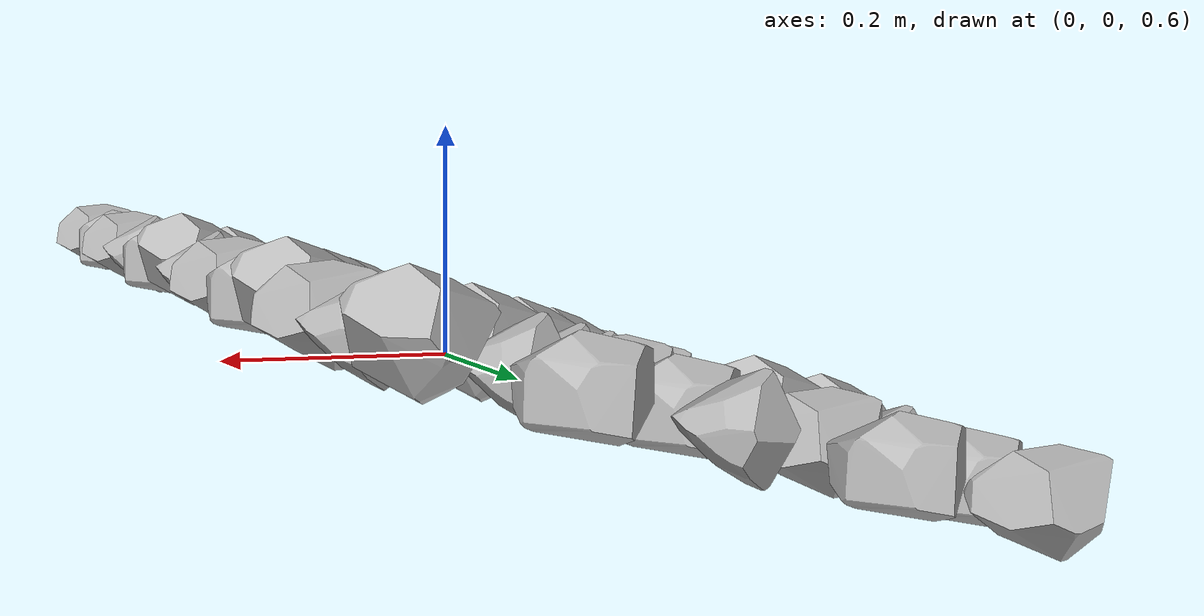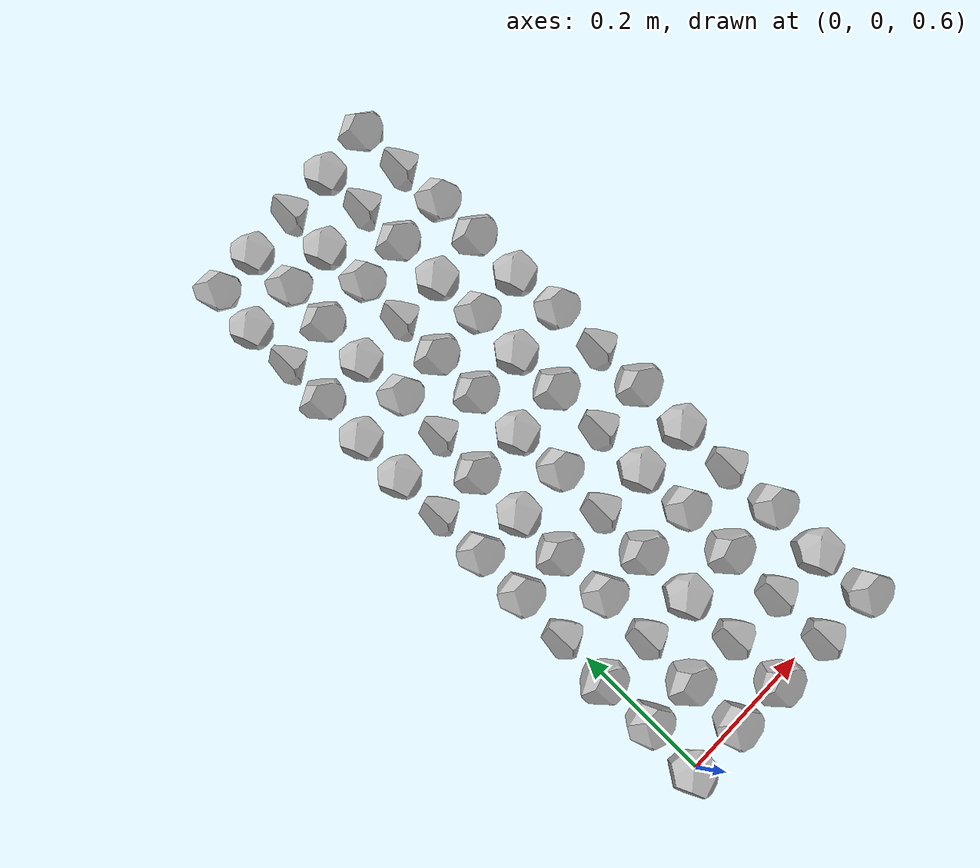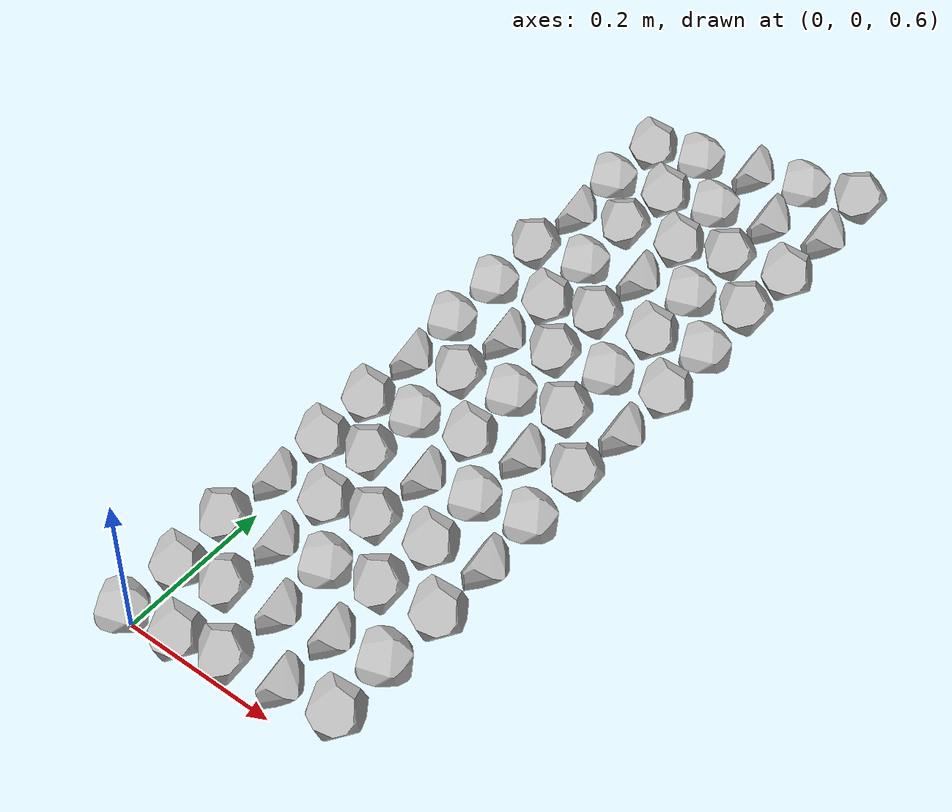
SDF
<?xml version='1.0'?>
<sdf version='1.5'>
  <model name="gravel_ramp1">
    <static>false</static>
    <pose>0 0 0.6 0 -0.26 0</pose>
      <!-- ter1  change collision mass ineritia ...-->

      <!-- ROW1 ################################################################################################ -->

      <link name="pebble00">
        <pose>0 0 0 0 0 0</pose>
        <inertial>
          <pose>0 0 0 0 0 0</pose>
          <mass>0.01</mass>
          <inertia>
            <ixx>0.0001</ixx>
            <iyy>0.0001</iyy>
            <izz>0.0001</izz>
            <ixy>0.0001</ixy>
            <ixz>0.0001</ixz>
            <iyz>0.0001</iyz>
          </inertia>
        </inertial>
        <visual name="visual">
          <geometry>
            <mesh>
              <uri>model://Pebble1/mesh/Pebble1.dae</uri>
            </mesh>
          </geometry>
        </visual>
        <collision name="collision">
          <geometry>
            <mesh>
              <uri>model://Pebble1/mesh/Pebble1.dae</uri>
            </mesh>
          </geometry>
        </collision>
      </link>

      <link name="pebble01">
        <pose>0 0.08 0 0 0 0</pose>
        <inertial>
          <pose>0 0 0 0 0 0</pose>
          <mass>0.01</mass>
          <inertia>
            <ixx>0.0001</ixx>
            <iyy>0.0001</iyy>
            <izz>0.0001</izz>
            <ixy>0.0001</ixy>
            <ixz>0.0001</ixz>
            <iyz>0.0001</iyz>
          </inertia>
        </inertial>
        <visual name="visual">
          <geometry>
            <mesh>
              <uri>model://Pebble2/mesh/Pebble2.dae</uri>
            </mesh>
          </geometry>
        </visual>
        <collision name="collision">
          <geometry>
            <mesh>
              <uri>model://Pebble2/mesh/Pebble2.dae</uri>
            </mesh>
          </geometry>
        </collision>
      </link>

      <link name="pebble02">
        <pose>0 0.16 0 0 0 0</pose>
        <inertial>
          <pose>0 0 0 0 0 0</pose>
          <mass>0.01</mass>
          <inertia>
            <ixx>0.0001</ixx>
            <iyy>0.0001</iyy>
            <izz>0.0001</izz>
            <ixy>0.0001</ixy>
            <ixz>0.0001</ixz>
            <iyz>0.0001</iyz>
          </inertia>
        </inertial>
        <visual name="visual">
          <geometry>
            <mesh>
              <uri>model://Pebble3/mesh/Pebble3.dae</uri>
            </mesh>
          </geometry>
        </visual>
        <collision name="collision">
          <geometry>
            <mesh>
              <uri>model://Pebble3/mesh/Pebble3.dae</uri>
            </mesh>
          </geometry>
        </collision>
      </link>

      <link name="pebble03">
        <pose>0 0.24 0 0 0 0</pose>
        <inertial>
          <pose>0 0 0 0 0 0</pose>
          <mass>0.01</mass>
          <inertia>
            <ixx>0.0001</ixx>
            <iyy>0.0001</iyy>
            <izz>0.0001</izz>
            <ixy>0.0001</ixy>
            <ixz>0.0001</ixz>
            <iyz>0.0001</iyz>
          </inertia>
        </inertial>
        <visual name="visual">
          <geometry>
            <mesh>
              <uri>model://Pebble4/mesh/Pebble4.dae</uri>
            </mesh>
          </geometry>
        </visual>
        <collision name="collision">
          <geometry>
            <mesh>
              <uri>model://Pebble4/mesh/Pebble4.dae</uri>
            </mesh>
          </geometry>
        </collision>
      </link>

      <link name="pebble04">
        <pose>0 0.32 0 0 0 0</pose>
        <inertial>
          <pose>0 0 0 0 0 0</pose>
          <mass>0.01</mass>
          <inertia>
            <ixx>0.0001</ixx>
            <iyy>0.0001</iyy>
            <izz>0.0001</izz>
            <ixy>0.0001</ixy>
            <ixz>0.0001</ixz>
            <iyz>0.0001</iyz>
          </inertia>
        </inertial>
        <visual name="visual">
          <geometry>
            <mesh>
              <uri>model://Pebble2/mesh/Pebble2.dae</uri>
            </mesh>
          </geometry>
        </visual>
        <collision name="collision">
          <geometry>
            <mesh>
              <uri>model://Pebble2/mesh/Pebble2.dae</uri>
            </mesh>
          </geometry>
        </collision>
      </link>

      <link name="pebble05">
        <pose>0 0.4 0 0 0 0</pose>
        <inertial>
          <pose>0 0 0 0 0 0</pose>
          <mass>0.01</mass>
          <inertia>
            <ixx>0.0001</ixx>
            <iyy>0.0001</iyy>
            <izz>0.0001</izz>
            <ixy>0.0001</ixy>
            <ixz>0.0001</ixz>
            <iyz>0.0001</iyz>
          </inertia>
        </inertial>
        <visual name="visual">
          <geometry>
            <mesh>
              <uri>model://Pebble2/mesh/Pebble2.dae</uri>
            </mesh>
          </geometry>
        </visual>
        <collision name="collision">
          <geometry>
            <mesh>
              <uri>model://Pebble2/mesh/Pebble2.dae</uri>
            </mesh>
          </geometry>
        </collision>
      </link>

      <link name="pebble06">
        <pose>0 0.48 0 0 0 0</pose>
        <inertial>
          <pose>0 0 0 0 0 0</pose>
          <mass>0.01</mass>
          <inertia>
            <ixx>0.0001</ixx>
            <iyy>0.0001</iyy>
            <izz>0.0001</izz>
            <ixy>0.0001</ixy>
            <ixz>0.0001</ixz>
            <iyz>0.0001</iyz>
          </inertia>
        </inertial>
        <visual name="visual">
          <geometry>
            <mesh>
              <uri>model://Pebble4/mesh/Pebble4.dae</uri>
            </mesh>
          </geometry>
        </visual>
        <collision name="collision">
          <geometry>
            <mesh>
              <uri>model://Pebble4/mesh/Pebble4.dae</uri>
            </mesh>
          </geometry>
        </collision>
      </link>

      <link name="pebble07">
        <pose>0 0.56 0 0 0 0</pose>
        <inertial>
          <pose>0 0 0 0 0 0</pose>
          <mass>0.01</mass>
          <inertia>
            <ixx>0.0001</ixx>
            <iyy>0.0001</iyy>
            <izz>0.0001</izz>
            <ixy>0.0001</ixy>
            <ixz>0.0001</ixz>
            <iyz>0.0001</iyz>
          </inertia>
        </inertial>
        <visual name="visual">
          <geometry>
            <mesh>
              <uri>model://Pebble1/mesh/Pebble1.dae</uri>
            </mesh>
          </geometry>
        </visual>
        <collision name="collision">
          <geometry>
            <mesh>
              <uri>model://Pebble1/mesh/Pebble1.dae</uri>
            </mesh>
          </geometry>
        </collision>
      </link>

      <link name="pebble08">
        <pose>0 0.64 0 0 0 0</pose>
        <inertial>
          <pose>0 0 0 0 0 0</pose>
          <mass>0.01</mass>
          <inertia>
            <ixx>0.0001</ixx>
            <iyy>0.0001</iyy>
            <izz>0.0001</izz>
            <ixy>0.0001</ixy>
            <ixz>0.0001</ixz>
            <iyz>0.0001</iyz>
          </inertia>
        </inertial>
        <visual name="visual">
          <geometry>
            <mesh>
              <uri>model://Pebble1/mesh/Pebble1.dae</uri>
            </mesh>
          </geometry>
        </visual>
        <collision name="collision">
          <geometry>
            <mesh>
              <uri>model://Pebble1/mesh/Pebble1.dae</uri>
            </mesh>
          </geometry>
        </collision>
      </link>

      <link name="pebble09">
        <pose>0 0.72 0 0 0 0</pose>
        <inertial>
          <pose>0 0 0 0 0 0</pose>
          <mass>0.01</mass>
          <inertia>
            <ixx>0.0001</ixx>
            <iyy>0.0001</iyy>
            <izz>0.0001</izz>
            <ixy>0.0001</ixy>
            <ixz>0.0001</ixz>
            <iyz>0.0001</iyz>
          </inertia>
        </inertial>
        <visual name="visual">
          <geometry>
            <mesh>
              <uri>model://Pebble3/mesh/Pebble3.dae</uri>
            </mesh>
          </geometry>
        </visual>
        <collision name="collision">
          <geometry>
            <mesh>
              <uri>model://Pebble3/mesh/Pebble3.dae</uri>
            </mesh>
          </geometry>
        </collision>
      </link>

      <link name="pebble0a">
        <pose>0 0.8 0 0 0 0</pose>
        <inertial>
          <pose>0 0 0 0 0 0</pose>
          <mass>0.01</mass>
          <inertia>
            <ixx>0.0001</ixx>
            <iyy>0.0001</iyy>
            <izz>0.0001</izz>
            <ixy>0.0001</ixy>
            <ixz>0.0001</ixz>
            <iyz>0.0001</iyz>
          </inertia>
        </inertial>
        <visual name="visual">
          <geometry>
            <mesh>
              <uri>model://Pebble4/mesh/Pebble4.dae</uri>
            </mesh>
          </geometry>
        </visual>
        <collision name="collision">
          <geometry>
            <mesh>
              <uri>model://Pebble4/mesh/Pebble4.dae</uri>
            </mesh>
          </geometry>
        </collision>
      </link>

      <link name="pebble0b">
        <pose>0 0.88 0 0 0 0</pose>
        <inertial>
          <pose>0 0 0 0 0 0</pose>
          <mass>0.01</mass>
          <inertia>
            <ixx>0.0001</ixx>
            <iyy>0.0001</iyy>
            <izz>0.0001</izz>
            <ixy>0.0001</ixy>
            <ixz>0.0001</ixz>
            <iyz>0.0001</iyz>
          </inertia>
        </inertial>
        <visual name="visual">
          <geometry>
            <mesh>
              <uri>model://Pebble1/mesh/Pebble1.dae</uri>
            </mesh>
          </geometry>
        </visual>
        <collision name="collision">
          <geometry>
            <mesh>
              <uri>model://Pebble1/mesh/Pebble1.dae</uri>
            </mesh>
          </geometry>
        </collision>
      </link>

      <link name="pebble0c">
        <pose>0 0.96 0 0 0 0</pose>
        <inertial>
          <pose>0 0 0 0 0 0</pose>
          <mass>0.01</mass>
          <inertia>
            <ixx>0.0001</ixx>
            <iyy>0.0001</iyy>
            <izz>0.0001</izz>
            <ixy>0.0001</ixy>
            <ixz>0.0001</ixz>
            <iyz>0.0001</iyz>
          </inertia>
        </inertial>
        <visual name="visual">
          <geometry>
            <mesh>
              <uri>model://Pebble2/mesh/Pebble2.dae</uri>
            </mesh>
          </geometry>
        </visual>
        <collision name="collision">
          <geometry>
            <mesh>
              <uri>model://Pebble2/mesh/Pebble2.dae</uri>
            </mesh>
          </geometry>
        </collision>
      </link>

      <!-- ROW2 ################################################################################################ -->

      <link name="pebble10">
        <pose>0.08 0 0 0 0 0</pose>
        <inertial>
          <pose>0 0 0 0 0 0</pose>
          <mass>0.01</mass>
          <inertia>
            <ixx>0.0001</ixx>
            <iyy>0.0001</iyy>
            <izz>0.0001</izz>
            <ixy>0.0001</ixy>
            <ixz>0.0001</ixz>
            <iyz>0.0001</iyz>
          </inertia>
        </inertial>
        <visual name="visual">
          <geometry>
            <mesh>
              <uri>model://Pebble2/mesh/Pebble2.dae</uri>
            </mesh>
          </geometry>
        </visual>
        <collision name="collision">
          <geometry>
            <mesh>
              <uri>model://Pebble2/mesh/Pebble2.dae</uri>
            </mesh>
          </geometry>
        </collision>
      </link>

      <link name="pebble11">
        <pose>0.08 0.08 0 0 0 0</pose>
        <inertial>
          <pose>0 0 0 0 0 0</pose>
          <mass>0.01</mass>
          <inertia>
            <ixx>0.0001</ixx>
            <iyy>0.0001</iyy>
            <izz>0.0001</izz>
            <ixy>0.0001</ixy>
            <ixz>0.0001</ixz>
            <iyz>0.0001</iyz>
          </inertia>
        </inertial>
        <visual name="visual">
          <geometry>
            <mesh>
              <uri>model://Pebble3/mesh/Pebble3.dae</uri>
            </mesh>
          </geometry>
        </visual>
        <collision name="collision">
          <geometry>
            <mesh>
              <uri>model://Pebble3/mesh/Pebble3.dae</uri>
            </mesh>
          </geometry>
        </collision>
      </link>

      <link name="pebble12">
        <pose>0.08 0.16 0 0 0 0</pose>
        <inertial>
          <pose>0 0 0 0 0 0</pose>
          <mass>0.01</mass>
          <inertia>
            <ixx>0.0001</ixx>
            <iyy>0.0001</iyy>
            <izz>0.0001</izz>
            <ixy>0.0001</ixy>
            <ixz>0.0001</ixz>
            <iyz>0.0001</iyz>
          </inertia>
        </inertial>
        <visual name="visual">
          <geometry>
            <mesh>
              <uri>model://Pebble4/mesh/Pebble4.dae</uri>
            </mesh>
          </geometry>
        </visual>
        <collision name="collision">
          <geometry>
            <mesh>
              <uri>model://Pebble4/mesh/Pebble4.dae</uri>
            </mesh>
          </geometry>
        </collision>
      </link>

      <link name="pebble13">
        <pose>0.08 0.24 0 0 0 0</pose>
        <inertial>
          <pose>0 0 0 0 0 0</pose>
          <mass>0.01</mass>
          <inertia>
            <ixx>0.0001</ixx>
            <iyy>0.0001</iyy>
            <izz>0.0001</izz>
            <ixy>0.0001</ixy>
            <ixz>0.0001</ixz>
            <iyz>0.0001</iyz>
          </inertia>
        </inertial>
        <visual name="visual">
          <geometry>
            <mesh>
              <uri>model://Pebble2/mesh/Pebble2.dae</uri>
            </mesh>
          </geometry>
        </visual>
        <collision name="collision">
          <geometry>
            <mesh>
              <uri>model://Pebble2/mesh/Pebble2.dae</uri>
            </mesh>
          </geometry>
        </collision>
      </link>

      <link name="pebble14">
        <pose>0.08 0.32 0 0 0 0</pose>
        <inertial>
          <pose>0 0 0 0 0 0</pose>
          <mass>0.01</mass>
          <inertia>
            <ixx>0.0001</ixx>
            <iyy>0.0001</iyy>
            <izz>0.0001</izz>
            <ixy>0.0001</ixy>
            <ixz>0.0001</ixz>
            <iyz>0.0001</iyz>
          </inertia>
        </inertial>
        <visual name="visual">
          <geometry>
            <mesh>
              <uri>model://Pebble3/mesh/Pebble3.dae</uri>
            </mesh>
          </geometry>
        </visual>
        <collision name="collision">
          <geometry>
            <mesh>
              <uri>model://Pebble3/mesh/Pebble3.dae</uri>
            </mesh>
          </geometry>
        </collision>
      </link>

      <link name="pebble15">
        <pose>0.08 0.4 0 0 0 0</pose>
        <inertial>
          <pose>0 0 0 0 0 0</pose>
          <mass>0.01</mass>
          <inertia>
            <ixx>0.0001</ixx>
            <iyy>0.0001</iyy>
            <izz>0.0001</izz>
            <ixy>0.0001</ixy>
            <ixz>0.0001</ixz>
            <iyz>0.0001</iyz>
          </inertia>
        </inertial>
        <visual name="visual">
          <geometry>
            <mesh>
              <uri>model://Pebble1/mesh/Pebble1.dae</uri>
            </mesh>
          </geometry>
        </visual>
        <collision name="collision">
          <geometry>
            <mesh>
              <uri>model://Pebble1/mesh/Pebble1.dae</uri>
            </mesh>
          </geometry>
        </collision>
      </link>

      <link name="pebble16">
        <pose>0.08 0.48 0 0 0 0</pose>
        <inertial>
          <pose>0 0 0 0 0 0</pose>
          <mass>0.01</mass>
          <inertia>
            <ixx>0.0001</ixx>
            <iyy>0.0001</iyy>
            <izz>0.0001</izz>
            <ixy>0.0001</ixy>
            <ixz>0.0001</ixz>
            <iyz>0.0001</iyz>
          </inertia>
        </inertial>
        <visual name="visual">
          <geometry>
            <mesh>
              <uri>model://Pebble3/mesh/Pebble3.dae</uri>
            </mesh>
          </geometry>
        </visual>
        <collision name="collision">
          <geometry>
            <mesh>
              <uri>model://Pebble3/mesh/Pebble3.dae</uri>
            </mesh>
          </geometry>
        </collision>
      </link>

      <link name="pebble17">
        <pose>0.08 0.56 0 0 0 0</pose>
        <inertial>
          <pose>0 0 0 0 0 0</pose>
          <mass>0.01</mass>
          <inertia>
            <ixx>0.0001</ixx>
            <iyy>0.0001</iyy>
            <izz>0.0001</izz>
            <ixy>0.0001</ixy>
            <ixz>0.0001</ixz>
            <iyz>0.0001</iyz>
          </inertia>
        </inertial>
        <visual name="visual">
          <geometry>
            <mesh>
              <uri>model://Pebble4/mesh/Pebble4.dae</uri>
            </mesh>
          </geometry>
        </visual>
        <collision name="collision">
          <geometry>
            <mesh>
              <uri>model://Pebble4/mesh/Pebble4.dae</uri>
            </mesh>
          </geometry>
        </collision>
      </link>

      <link name="pebble18">
        <pose>0.08 0.64 0 0 0 0</pose>
        <inertial>
          <pose>0 0 0 0 0 0</pose>
          <mass>0.01</mass>
          <inertia>
            <ixx>0.0001</ixx>
            <iyy>0.0001</iyy>
            <izz>0.0001</izz>
            <ixy>0.0001</ixy>
            <ixz>0.0001</ixz>
            <iyz>0.0001</iyz>
          </inertia>
        </inertial>
        <visual name="visual">
          <geometry>
            <mesh>
              <uri>model://Pebble2/mesh/Pebble2.dae</uri>
            </mesh>
          </geometry>
        </visual>
        <collision name="collision">
          <geometry>
            <mesh>
              <uri>model://Pebble2/mesh/Pebble2.dae</uri>
            </mesh>
          </geometry>
        </collision>
      </link>

      <link name="pebble19">
        <pose>0.08 0.72 0 0 0 0</pose>
        <inertial>
          <pose>0 0 0 0 0 0</pose>
          <mass>0.01</mass>
          <inertia>
            <ixx>0.0001</ixx>
            <iyy>0.0001</iyy>
            <izz>0.0001</izz>
            <ixy>0.0001</ixy>
            <ixz>0.0001</ixz>
            <iyz>0.0001</iyz>
          </inertia>
        </inertial>
        <visual name="visual">
          <geometry>
            <mesh>
              <uri>model://Pebble1/mesh/Pebble1.dae</uri>
            </mesh>
          </geometry>
        </visual>
        <collision name="collision">
          <geometry>
            <mesh>
              <uri>model://Pebble1/mesh/Pebble1.dae</uri>
            </mesh>
          </geometry>
        </collision>
      </link>

      <link name="pebble1a">
        <pose>0.08 0.8 0 0 0 0</pose>
        <inertial>
          <pose>0 0 0 0 0 0</pose>
          <mass>0.01</mass>
          <inertia>
            <ixx>0.0001</ixx>
            <iyy>0.0001</iyy>
            <izz>0.0001</izz>
            <ixy>0.0001</ixy>
            <ixz>0.0001</ixz>
            <iyz>0.0001</iyz>
          </inertia>
        </inertial>
        <visual name="visual">
          <geometry>
            <mesh>
              <uri>model://Pebble3/mesh/Pebble3.dae</uri>
            </mesh>
          </geometry>
        </visual>
        <collision name="collision">
          <geometry>
            <mesh>
              <uri>model://Pebble3/mesh/Pebble3.dae</uri>
            </mesh>
          </geometry>
        </collision>
      </link>

      <link name="pebble1b">
        <pose>0.08 0.88 0 0 0 0</pose>
        <inertial>
          <pose>0 0 0 0 0 0</pose>
          <mass>0.01</mass>
          <inertia>
            <ixx>0.0001</ixx>
            <iyy>0.0001</iyy>
            <izz>0.0001</izz>
            <ixy>0.0001</ixy>
            <ixz>0.0001</ixz>
            <iyz>0.0001</iyz>
          </inertia>
        </inertial>
        <visual name="visual">
          <geometry>
            <mesh>
              <uri>model://Pebble2/mesh/Pebble2.dae</uri>
            </mesh>
          </geometry>
        </visual>
        <collision name="collision">
          <geometry>
            <mesh>
              <uri>model://Pebble2/mesh/Pebble2.dae</uri>
            </mesh>
          </geometry>
        </collision>
      </link>

      <link name="pebble1c">
        <pose>0.08 0.96 0 0 0 0</pose>
        <inertial>
          <pose>0 0 0 0 0 0</pose>
          <mass>0.01</mass>
          <inertia>
            <ixx>0.0001</ixx>
            <iyy>0.0001</iyy>
            <izz>0.0001</izz>
            <ixy>0.0001</ixy>
            <ixz>0.0001</ixz>
            <iyz>0.0001</iyz>
          </inertia>
        </inertial>
        <visual name="visual">
          <geometry>
            <mesh>
              <uri>model://Pebble1/mesh/Pebble1.dae</uri>
            </mesh>
          </geometry>
        </visual>
        <collision name="collision">
          <geometry>
            <mesh>
              <uri>model://Pebble1/mesh/Pebble1.dae</uri>
            </mesh>
          </geometry>
        </collision>
      </link>

      <!-- ROW3 ################################################################################################ -->

      <link name="pebble20">
        <pose>0.16 0 0 0 0 0</pose>
        <inertial>
          <pose>0 0 0 0 0 0</pose>
          <mass>0.01</mass>
          <inertia>
            <ixx>0.0001</ixx>
            <iyy>0.0001</iyy>
            <izz>0.0001</izz>
            <ixy>0.0001</ixy>
            <ixz>0.0001</ixz>
            <iyz>0.0001</iyz>
          </inertia>
        </inertial>
        <visual name="visual">
          <geometry>
            <mesh>
              <uri>model://Pebble3/mesh/Pebble3.dae</uri>
            </mesh>
          </geometry>
        </visual>
        <collision name="collision">
          <geometry>
            <mesh>
              <uri>model://Pebble3/mesh/Pebble3.dae</uri>
            </mesh>
          </geometry>
        </collision>
      </link>

      <link name="pebble21">
        <pose>0.16 0.08 0 0 0 0</pose>
        <inertial>
          <pose>0 0 0 0 0 0</pose>
          <mass>0.01</mass>
          <inertia>
            <ixx>0.0001</ixx>
            <iyy>0.0001</iyy>
            <izz>0.0001</izz>
            <ixy>0.0001</ixy>
            <ixz>0.0001</ixz>
            <iyz>0.0001</iyz>
          </inertia>
        </inertial>
        <visual name="visual">
          <geometry>
            <mesh>
              <uri>model://Pebble4/mesh/Pebble4.dae</uri>
            </mesh>
          </geometry>
        </visual>
        <collision name="collision">
          <geometry>
            <mesh>
              <uri>model://Pebble4/mesh/Pebble4.dae</uri>
            </mesh>
          </geometry>
        </collision>
      </link>

      <link name="pebble22">
        <pose>0.16 0.16 0 0 0 0</pose>
        <inertial>
          <pose>0 0 0 0 0 0</pose>
          <mass>0.01</mass>
          <inertia>
            <ixx>0.0001</ixx>
            <iyy>0.0001</iyy>
            <izz>0.0001</izz>
            <ixy>0.0001</ixy>
            <ixz>0.0001</ixz>
            <iyz>0.0001</iyz>
          </inertia>
        </inertial>
        <visual name="visual">
          <geometry>
            <mesh>
              <uri>model://Pebble1/mesh/Pebble1.dae</uri>
            </mesh>
          </geometry>
        </visual>
        <collision name="collision">
          <geometry>
            <mesh>
              <uri>model://Pebble1/mesh/Pebble1.dae</uri>
            </mesh>
          </geometry>
        </collision>
      </link>

      <link name="pebble23">
        <pose>0.16 0.24 0 0 0 0</pose>
        <inertial>
          <pose>0 0 0 0 0 0</pose>
          <mass>0.01</mass>
          <inertia>
            <ixx>0.0001</ixx>
            <iyy>0.0001</iyy>
            <izz>0.0001</izz>
            <ixy>0.0001</ixy>
            <ixz>0.0001</ixz>
            <iyz>0.0001</iyz>
          </inertia>
        </inertial>
        <visual name="visual">
          <geometry>
            <mesh>
              <uri>model://Pebble3/mesh/Pebble3.dae</uri>
            </mesh>
          </geometry>
        </visual>
        <collision name="collision">
          <geometry>
            <mesh>
              <uri>model://Pebble3/mesh/Pebble3.dae</uri>
            </mesh>
          </geometry>
        </collision>
      </link>

      <link name="pebble24">
        <pose>0.16 0.32 0 0 0 0</pose>
        <inertial>
          <pose>0 0 0 0 0 0</pose>
          <mass>0.01</mass>
          <inertia>
            <ixx>0.0001</ixx>
            <iyy>0.0001</iyy>
            <izz>0.0001</izz>
            <ixy>0.0001</ixy>
            <ixz>0.0001</ixz>
            <iyz>0.0001</iyz>
          </inertia>
        </inertial>
        <visual name="visual">
          <geometry>
            <mesh>
              <uri>model://Pebble4/mesh/Pebble4.dae</uri>
            </mesh>
          </geometry>
        </visual>
        <collision name="collision">
          <geometry>
            <mesh>
              <uri>model://Pebble4/mesh/Pebble4.dae</uri>
            </mesh>
          </geometry>
        </collision>
      </link>

      <link name="pebble25">
        <pose>0.16 0.4 0 0 0 0</pose>
        <inertial>
          <pose>0 0 0 0 0 0</pose>
          <mass>0.01</mass>
          <inertia>
            <ixx>0.0001</ixx>
            <iyy>0.0001</iyy>
            <izz>0.0001</izz>
            <ixy>0.0001</ixy>
            <ixz>0.0001</ixz>
            <iyz>0.0001</iyz>
          </inertia>
        </inertial>
        <visual name="visual">
          <geometry>
            <mesh>
              <uri>model://Pebble2/mesh/Pebble2.dae</uri>
            </mesh>
          </geometry>
        </visual>
        <collision name="collision">
          <geometry>
            <mesh>
              <uri>model://Pebble2/mesh/Pebble2.dae</uri>
            </mesh>
          </geometry>
        </collision>
      </link>

      <link name="pebble26">
        <pose>0.16 0.48 0 0 0 0</pose>
        <inertial>
          <pose>0 0 0 0 0 0</pose>
          <mass>0.01</mass>
          <inertia>
            <ixx>0.0001</ixx>
            <iyy>0.0001</iyy>
            <izz>0.0001</izz>
            <ixy>0.0001</ixy>
            <ixz>0.0001</ixz>
            <iyz>0.0001</iyz>
          </inertia>
        </inertial>
        <visual name="visual">
          <geometry>
            <mesh>
              <uri>model://Pebble1/mesh/Pebble1.dae</uri>
            </mesh>
          </geometry>
        </visual>
        <collision name="collision">
          <geometry>
            <mesh>
              <uri>model://Pebble1/mesh/Pebble1.dae</uri>
            </mesh>
          </geometry>
        </collision>
      </link>

      <link name="pebble27">
        <pose>0.16 0.56 0 0 0 0</pose>
        <inertial>
          <pose>0 0 0 0 0 0</pose>
          <mass>0.01</mass>
          <inertia>
            <ixx>0.0001</ixx>
            <iyy>0.0001</iyy>
            <izz>0.0001</izz>
            <ixy>0.0001</ixy>
            <ixz>0.0001</ixz>
            <iyz>0.0001</iyz>
          </inertia>
        </inertial>
        <visual name="visual">
          <geometry>
            <mesh>
              <uri>model://Pebble3/mesh/Pebble3.dae</uri>
            </mesh>
          </geometry>
        </visual>
        <collision name="collision">
          <geometry>
            <mesh>
              <uri>model://Pebble3/mesh/Pebble3.dae</uri>
            </mesh>
          </geometry>
        </collision>
      </link>

      <link name="pebble28">
        <pose>0.16 0.64 0 0 0 0</pose>
        <inertial>
          <pose>0 0 0 0 0 0</pose>
          <mass>0.01</mass>
          <inertia>
            <ixx>0.0001</ixx>
            <iyy>0.0001</iyy>
            <izz>0.0001</izz>
            <ixy>0.0001</ixy>
            <ixz>0.0001</ixz>
            <iyz>0.0001</iyz>
          </inertia>
        </inertial>
        <visual name="visual">
          <geometry>
            <mesh>
              <uri>model://Pebble3/mesh/Pebble3.dae</uri>
            </mesh>
          </geometry>
        </visual>
        <collision name="collision">
          <geometry>
            <mesh>
              <uri>model://Pebble3/mesh/Pebble3.dae</uri>
            </mesh>
          </geometry>
        </collision>
      </link>

      <link name="pebble29">
        <pose>0.16 0.72 0 0 0 0</pose>
        <inertial>
          <pose>0 0 0 0 0 0</pose>
          <mass>0.01</mass>
          <inertia>
            <ixx>0.0001</ixx>
            <iyy>0.0001</iyy>
            <izz>0.0001</izz>
            <ixy>0.0001</ixy>
            <ixz>0.0001</ixz>
            <iyz>0.0001</iyz>
          </inertia>
        </inertial>
        <visual name="visual">
          <geometry>
            <mesh>
              <uri>model://Pebble4/mesh/Pebble4.dae</uri>
            </mesh>
          </geometry>
        </visual>
        <collision name="collision">
          <geometry>
            <mesh>
              <uri>model://Pebble4/mesh/Pebble4.dae</uri>
            </mesh>
          </geometry>
        </collision>
      </link>

      <link name="pebble2a">
        <pose>0.16 0.8 0 0 0 0</pose>
        <inertial>
          <pose>0 0 0 0 0 0</pose>
          <mass>0.01</mass>
          <inertia>
            <ixx>0.0001</ixx>
            <iyy>0.0001</iyy>
            <izz>0.0001</izz>
            <ixy>0.0001</ixy>
            <ixz>0.0001</ixz>
            <iyz>0.0001</iyz>
          </inertia>
        </inertial>
        <visual name="visual">
          <geometry>
            <mesh>
              <uri>model://Pebble2/mesh/Pebble2.dae</uri>
            </mesh>
          </geometry>
        </visual>
        <collision name="collision">
          <geometry>
            <mesh>
              <uri>model://Pebble2/mesh/Pebble2.dae</uri>
            </mesh>
          </geometry>
        </collision>
      </link>

      <link name="pebble2b">
        <pose>0.16 0.88 0 0 0 0</pose>
        <inertial>
          <pose>0 0 0 0 0 0</pose>
          <mass>0.01</mass>
          <inertia>
            <ixx>0.0001</ixx>
            <iyy>0.0001</iyy>
            <izz>0.0001</izz>
            <ixy>0.0001</ixy>
            <ixz>0.0001</ixz>
            <iyz>0.0001</iyz>
          </inertia>
        </inertial>
        <visual name="visual">
          <geometry>
            <mesh>
              <uri>model://Pebble1/mesh/Pebble1.dae</uri>
            </mesh>
          </geometry>
        </visual>
        <collision name="collision">
          <geometry>
            <mesh>
              <uri>model://Pebble1/mesh/Pebble1.dae</uri>
            </mesh>
          </geometry>
        </collision>
      </link>

      <link name="pebble2c">
        <pose>0.16 0.96 0 0 0 0</pose>
        <inertial>
          <pose>0 0 0 0 0 0</pose>
          <mass>0.01</mass>
          <inertia>
            <ixx>0.0001</ixx>
            <iyy>0.0001</iyy>
            <izz>0.0001</izz>
            <ixy>0.0001</ixy>
            <ixz>0.0001</ixz>
            <iyz>0.0001</iyz>
          </inertia>
        </inertial>
        <visual name="visual">
          <geometry>
            <mesh>
              <uri>model://Pebble4/mesh/Pebble4.dae</uri>
            </mesh>
          </geometry>
        </visual>
        <collision name="collision">
          <geometry>
            <mesh>
              <uri>model://Pebble4/mesh/Pebble4.dae</uri>
            </mesh>
          </geometry>
        </collision>
      </link>

      <!-- ROW4 ################################################################################################ -->

      <link name="pebble30">
        <pose>0.24 0 0 0 0 0</pose>
        <inertial>
          <pose>0 0 0 0 0 0</pose>
          <mass>0.01</mass>
          <inertia>
            <ixx>0.0001</ixx>
            <iyy>0.0001</iyy>
            <izz>0.0001</izz>
            <ixy>0.0001</ixy>
            <ixz>0.0001</ixz>
            <iyz>0.0001</iyz>
          </inertia>
        </inertial>
        <visual name="visual">
          <geometry>
            <mesh>
              <uri>model://Pebble4/mesh/Pebble4.dae</uri>
            </mesh>
          </geometry>
        </visual>
        <collision name="collision">
          <geometry>
            <mesh>
              <uri>model://Pebble4/mesh/Pebble4.dae</uri>
            </mesh>
          </geometry>
        </collision>
      </link>

      <link name="pebble31">
        <pose>0.24 0.08 0 0 0 0</pose>
        <inertial>
          <pose>0 0 0 0 0 0</pose>
          <mass>0.01</mass>
          <inertia>
            <ixx>0.0001</ixx>
            <iyy>0.0001</iyy>
            <izz>0.0001</izz>
            <ixy>0.0001</ixy>
            <ixz>0.0001</ixz>
            <iyz>0.0001</iyz>
          </inertia>
        </inertial>
        <visual name="visual">
          <geometry>
            <mesh>
              <uri>model://Pebble4/mesh/Pebble4.dae</uri>
            </mesh>
          </geometry>
        </visual>
        <collision name="collision">
          <geometry>
            <mesh>
              <uri>model://Pebble4/mesh/Pebble4.dae</uri>
            </mesh>
          </geometry>
        </collision>
      </link>

      <link name="pebble32">
        <pose>0.24 0.16 0 0 0 0</pose>
        <inertial>
          <pose>0 0 0 0 0 0</pose>
          <mass>0.01</mass>
          <inertia>
            <ixx>0.0001</ixx>
            <iyy>0.0001</iyy>
            <izz>0.0001</izz>
            <ixy>0.0001</ixy>
            <ixz>0.0001</ixz>
            <iyz>0.0001</iyz>
          </inertia>
        </inertial>
        <visual name="visual">
          <geometry>
            <mesh>
              <uri>model://Pebble3/mesh/Pebble3.dae</uri>
            </mesh>
          </geometry>
        </visual>
        <collision name="collision">
          <geometry>
            <mesh>
              <uri>model://Pebble3/mesh/Pebble3.dae</uri>
            </mesh>
          </geometry>
        </collision>
      </link>

      <link name="pebble33">
        <pose>0.24 0.24 0 0 0 0</pose>
        <inertial>
          <pose>0 0 0 0 0 0</pose>
          <mass>0.01</mass>
          <inertia>
            <ixx>0.0001</ixx>
            <iyy>0.0001</iyy>
            <izz>0.0001</izz>
            <ixy>0.0001</ixy>
            <ixz>0.0001</ixz>
            <iyz>0.0001</iyz>
          </inertia>
        </inertial>
        <visual name="visual">
          <geometry>
            <mesh>
              <uri>model://Pebble2/mesh/Pebble2.dae</uri>
            </mesh>
          </geometry>
        </visual>
        <collision name="collision">
          <geometry>
            <mesh>
              <uri>model://Pebble2/mesh/Pebble2.dae</uri>
            </mesh>
          </geometry>
        </collision>
      </link>

      <link name="pebble34">
        <pose>0.24 0.32 0 0 0 0</pose>
        <inertial>
          <pose>0 0 0 0 0 0</pose>
          <mass>0.01</mass>
          <inertia>
            <ixx>0.0001</ixx>
            <iyy>0.0001</iyy>
            <izz>0.0001</izz>
            <ixy>0.0001</ixy>
            <ixz>0.0001</ixz>
            <iyz>0.0001</iyz>
          </inertia>
        </inertial>
        <visual name="visual">
          <geometry>
            <mesh>
              <uri>model://Pebble1/mesh/Pebble1.dae</uri>
            </mesh>
          </geometry>
        </visual>
        <collision name="collision">
          <geometry>
            <mesh>
              <uri>model://Pebble1/mesh/Pebble1.dae</uri>
            </mesh>
          </geometry>
        </collision>
      </link>

      <link name="pebble35">
        <pose>0.24 0.4 0 0 0 0</pose>
        <inertial>
          <pose>0 0 0 0 0 0</pose>
          <mass>0.01</mass>
          <inertia>
            <ixx>0.0001</ixx>
            <iyy>0.0001</iyy>
            <izz>0.0001</izz>
            <ixy>0.0001</ixy>
            <ixz>0.0001</ixz>
            <iyz>0.0001</iyz>
          </inertia>
        </inertial>
        <visual name="visual">
          <geometry>
            <mesh>
              <uri>model://Pebble4/mesh/Pebble4.dae</uri>
            </mesh>
          </geometry>
        </visual>
        <collision name="collision">
          <geometry>
            <mesh>
              <uri>model://Pebble4/mesh/Pebble4.dae</uri>
            </mesh>
          </geometry>
        </collision>
      </link>

      <link name="pebble36">
        <pose>0.24 0.48 0 0 0 0</pose>
        <inertial>
          <pose>0 0 0 0 0 0</pose>
          <mass>0.01</mass>
          <inertia>
            <ixx>0.0001</ixx>
            <iyy>0.0001</iyy>
            <izz>0.0001</izz>
            <ixy>0.0001</ixy>
            <ixz>0.0001</ixz>
            <iyz>0.0001</iyz>
          </inertia>
        </inertial>
        <visual name="visual">
          <geometry>
            <mesh>
              <uri>model://Pebble3/mesh/Pebble3.dae</uri>
            </mesh>
          </geometry>
        </visual>
        <collision name="collision">
          <geometry>
            <mesh>
              <uri>model://Pebble3/mesh/Pebble3.dae</uri>
            </mesh>
          </geometry>
        </collision>
      </link>

      <link name="pebble37">
        <pose>0.24 0.56 0 0 0 0</pose>
        <inertial>
          <pose>0 0 0 0 0 0</pose>
          <mass>0.01</mass>
          <inertia>
            <ixx>0.0001</ixx>
            <iyy>0.0001</iyy>
            <izz>0.0001</izz>
            <ixy>0.0001</ixy>
            <ixz>0.0001</ixz>
            <iyz>0.0001</iyz>
          </inertia>
        </inertial>
        <visual name="visual">
          <geometry>
            <mesh>
              <uri>model://Pebble1/mesh/Pebble1.dae</uri>
            </mesh>
          </geometry>
        </visual>
        <collision name="collision">
          <geometry>
            <mesh>
              <uri>model://Pebble1/mesh/Pebble1.dae</uri>
            </mesh>
          </geometry>
        </collision>
      </link>

      <link name="pebble38">
        <pose>0.24 0.64 0 0 0 0</pose>
        <inertial>
          <pose>0 0 0 0 0 0</pose>
          <mass>0.01</mass>
          <inertia>
            <ixx>0.0001</ixx>
            <iyy>0.0001</iyy>
            <izz>0.0001</izz>
            <ixy>0.0001</ixy>
            <ixz>0.0001</ixz>
            <iyz>0.0001</iyz>
          </inertia>
        </inertial>
        <visual name="visual">
          <geometry>
            <mesh>
              <uri>model://Pebble2/mesh/Pebble2.dae</uri>
            </mesh>
          </geometry>
        </visual>
        <collision name="collision">
          <geometry>
            <mesh>
              <uri>model://Pebble2/mesh/Pebble2.dae</uri>
            </mesh>
          </geometry>
        </collision>
      </link>

      <link name="pebble39">
        <pose>0.24 0.72 0 0 0 0</pose>
        <inertial>
          <pose>0 0 0 0 0 0</pose>
          <mass>0.01</mass>
          <inertia>
            <ixx>0.0001</ixx>
            <iyy>0.0001</iyy>
            <izz>0.0001</izz>
            <ixy>0.0001</ixy>
            <ixz>0.0001</ixz>
            <iyz>0.0001</iyz>
          </inertia>
        </inertial>
        <visual name="visual">
          <geometry>
            <mesh>
              <uri>model://Pebble1/mesh/Pebble1.dae</uri>
            </mesh>
          </geometry>
        </visual>
        <collision name="collision">
          <geometry>
            <mesh>
              <uri>model://Pebble1/mesh/Pebble1.dae</uri>
            </mesh>
          </geometry>
        </collision>
      </link>

      <link name="pebble3a">
        <pose>0.24 0.8 0 0 0 0</pose>
        <inertial>
          <pose>0 0 0 0 0 0</pose>
          <mass>0.01</mass>
          <inertia>
            <ixx>0.0001</ixx>
            <iyy>0.0001</iyy>
            <izz>0.0001</izz>
            <ixy>0.0001</ixy>
            <ixz>0.0001</ixz>
            <iyz>0.0001</iyz>
          </inertia>
        </inertial>
        <visual name="visual">
          <geometry>
            <mesh>
              <uri>model://Pebble3/mesh/Pebble3.dae</uri>
            </mesh>
          </geometry>
        </visual>
        <collision name="collision">
          <geometry>
            <mesh>
              <uri>model://Pebble3/mesh/Pebble3.dae</uri>
            </mesh>
          </geometry>
        </collision>
      </link>

      <link name="pebble3b">
        <pose>0.24 0.88 0 0 0 0</pose>
        <inertial>
          <pose>0 0 0 0 0 0</pose>
          <mass>0.01</mass>
          <inertia>
            <ixx>0.0001</ixx>
            <iyy>0.0001</iyy>
            <izz>0.0001</izz>
            <ixy>0.0001</ixy>
            <ixz>0.0001</ixz>
            <iyz>0.0001</iyz>
          </inertia>
        </inertial>
        <visual name="visual">
          <geometry>
            <mesh>
              <uri>model://Pebble4/mesh/Pebble4.dae</uri>
            </mesh>
          </geometry>
        </visual>
        <collision name="collision">
          <geometry>
            <mesh>
              <uri>model://Pebble4/mesh/Pebble4.dae</uri>
            </mesh>
          </geometry>
        </collision>
      </link>

      <link name="pebble3c">
        <pose>0.24 0.96 0 0 0 0</pose>
        <inertial>
          <pose>0 0 0 0 0 0</pose>
          <mass>0.01</mass>
          <inertia>
            <ixx>0.0001</ixx>
            <iyy>0.0001</iyy>
            <izz>0.0001</izz>
            <ixy>0.0001</ixy>
            <ixz>0.0001</ixz>
            <iyz>0.0001</iyz>
          </inertia>
        </inertial>
        <visual name="visual">
          <geometry>
            <mesh>
              <uri>model://Pebble1/mesh/Pebble1.dae</uri>
            </mesh>
          </geometry>
        </visual>
        <collision name="collision">
          <geometry>
            <mesh>
              <uri>model://Pebble1/mesh/Pebble1.dae</uri>
            </mesh>
          </geometry>
        </collision>
      </link>

      <!-- ROW5 ################################################################################################ -->

      <link name="pebble40">
        <pose>0.32 0 0 0 0 0</pose>
        <inertial>
          <pose>0 0 0 0 0 0</pose>
          <mass>0.01</mass>
          <inertia>
            <ixx>0.0001</ixx>
            <iyy>0.0001</iyy>
            <izz>0.0001</izz>
            <ixy>0.0001</ixy>
            <ixz>0.0001</ixz>
            <iyz>0.0001</iyz>
          </inertia>
        </inertial>
        <visual name="visual">
          <geometry>
            <mesh>
              <uri>model://Pebble2/mesh/Pebble2.dae</uri>
            </mesh>
          </geometry>
        </visual>
        <collision name="collision">
          <geometry>
            <mesh>
              <uri>model://Pebble2/mesh/Pebble2.dae</uri>
            </mesh>
          </geometry>
        </collision>
      </link>

      <link name="pebble41">
        <pose>0.32 0.08 0 0 0 0</pose>
        <inertial>
          <pose>0 0 0 0 0 0</pose>
          <mass>0.01</mass>
          <inertia>
            <ixx>0.0001</ixx>
            <iyy>0.0001</iyy>
            <izz>0.0001</izz>
            <ixy>0.0001</ixy>
            <ixz>0.0001</ixz>
            <iyz>0.0001</iyz>
          </inertia>
        </inertial>
        <visual name="visual">
          <geometry>
            <mesh>
              <uri>model://Pebble1/mesh/Pebble1.dae</uri>
            </mesh>
          </geometry>
        </visual>
        <collision name="collision">
          <geometry>
            <mesh>
              <uri>model://Pebble1/mesh/Pebble1.dae</uri>
            </mesh>
          </geometry>
        </collision>
      </link>

      <link name="pebble42">
        <pose>0.32 0.16 0 0 0 0</pose>
        <inertial>
          <pose>0 0 0 0 0 0</pose>
          <mass>0.01</mass>
          <inertia>
            <ixx>0.0001</ixx>
            <iyy>0.0001</iyy>
            <izz>0.0001</izz>
            <ixy>0.0001</ixy>
            <ixz>0.0001</ixz>
            <iyz>0.0001</iyz>
          </inertia>
        </inertial>
        <visual name="visual">
          <geometry>
            <mesh>
              <uri>model://Pebble2/mesh/Pebble2.dae</uri>
            </mesh>
          </geometry>
        </visual>
        <collision name="collision">
          <geometry>
            <mesh>
              <uri>model://Pebble2/mesh/Pebble2.dae</uri>
            </mesh>
          </geometry>
        </collision>
      </link>

      <link name="pebble43">
        <pose>0.32 0.24 0 0 0 0</pose>
        <inertial>
          <pose>0 0 0 0 0 0</pose>
          <mass>0.01</mass>
          <inertia>
            <ixx>0.0001</ixx>
            <iyy>0.0001</iyy>
            <izz>0.0001</izz>
            <ixy>0.0001</ixy>
            <ixz>0.0001</ixz>
            <iyz>0.0001</iyz>
          </inertia>
        </inertial>
        <visual name="visual">
          <geometry>
            <mesh>
              <uri>model://Pebble4/mesh/Pebble4.dae</uri>
            </mesh>
          </geometry>
        </visual>
        <collision name="collision">
          <geometry>
            <mesh>
              <uri>model://Pebble4/mesh/Pebble4.dae</uri>
            </mesh>
          </geometry>
        </collision>
      </link>

      <link name="pebble44">
        <pose>0.32 0.32 0 0 0 0</pose>
        <inertial>
          <pose>0 0 0 0 0 0</pose>
          <mass>0.01</mass>
          <inertia>
            <ixx>0.0001</ixx>
            <iyy>0.0001</iyy>
            <izz>0.0001</izz>
            <ixy>0.0001</ixy>
            <ixz>0.0001</ixz>
            <iyz>0.0001</iyz>
          </inertia>
        </inertial>
        <visual name="visual">
          <geometry>
            <mesh>
              <uri>model://Pebble1/mesh/Pebble1.dae</uri>
            </mesh>
          </geometry>
        </visual>
        <collision name="collision">
          <geometry>
            <mesh>
              <uri>model://Pebble1/mesh/Pebble1.dae</uri>
            </mesh>
          </geometry>
        </collision>
      </link>

      <link name="pebble45">
        <pose>0.32 0.4 0 0 0 0</pose>
        <inertial>
          <pose>0 0 0 0 0 0</pose>
          <mass>0.01</mass>
          <inertia>
            <ixx>0.0001</ixx>
            <iyy>0.0001</iyy>
            <izz>0.0001</izz>
            <ixy>0.0001</ixy>
            <ixz>0.0001</ixz>
            <iyz>0.0001</iyz>
          </inertia>
        </inertial>
        <visual name="visual">
          <geometry>
            <mesh>
              <uri>model://Pebble3/mesh/Pebble3.dae</uri>
            </mesh>
          </geometry>
        </visual>
        <collision name="collision">
          <geometry>
            <mesh>
              <uri>model://Pebble3/mesh/Pebble3.dae</uri>
            </mesh>
          </geometry>
        </collision>
      </link>

      <link name="pebble46">
        <pose>0.32 0.48 0 0 0 0</pose>
        <inertial>
          <pose>0 0 0 0 0 0</pose>
          <mass>0.01</mass>
          <inertia>
            <ixx>0.0001</ixx>
            <iyy>0.0001</iyy>
            <izz>0.0001</izz>
            <ixy>0.0001</ixy>
            <ixz>0.0001</ixz>
            <iyz>0.0001</iyz>
          </inertia>
        </inertial>
        <visual name="visual">
          <geometry>
            <mesh>
              <uri>model://Pebble4/mesh/Pebble4.dae</uri>
            </mesh>
          </geometry>
        </visual>
        <collision name="collision">
          <geometry>
            <mesh>
              <uri>model://Pebble4/mesh/Pebble4.dae</uri>
            </mesh>
          </geometry>
        </collision>
      </link>

      <link name="pebble47">
        <pose>0.32 0.56 0 0 0 0</pose>
        <inertial>
          <pose>0 0 0 0 0 0</pose>
          <mass>0.01</mass>
          <inertia>
            <ixx>0.0001</ixx>
            <iyy>0.0001</iyy>
            <izz>0.0001</izz>
            <ixy>0.0001</ixy>
            <ixz>0.0001</ixz>
            <iyz>0.0001</iyz>
          </inertia>
        </inertial>
        <visual name="visual">
          <geometry>
            <mesh>
              <uri>model://Pebble2/mesh/Pebble2.dae</uri>
            </mesh>
          </geometry>
        </visual>
        <collision name="collision">
          <geometry>
            <mesh>
              <uri>model://Pebble2/mesh/Pebble2.dae</uri>
            </mesh>
          </geometry>
        </collision>
      </link>

      <link name="pebble48">
        <pose>0.32 0.64 0 0 0 0</pose>
        <inertial>
          <pose>0 0 0 0 0 0</pose>
          <mass>0.01</mass>
          <inertia>
            <ixx>0.0001</ixx>
            <iyy>0.0001</iyy>
            <izz>0.0001</izz>
            <ixy>0.0001</ixy>
            <ixz>0.0001</ixz>
            <iyz>0.0001</iyz>
          </inertia>
        </inertial>
        <visual name="visual">
          <geometry>
            <mesh>
              <uri>model://Pebble1/mesh/Pebble1.dae</uri>
            </mesh>
          </geometry>
        </visual>
        <collision name="collision">
          <geometry>
            <mesh>
              <uri>model://Pebble1/mesh/Pebble1.dae</uri>
            </mesh>
          </geometry>
        </collision>
      </link>

      <link name="pebble49">
        <pose>0.32 0.72 0 0 0 0</pose>
        <inertial>
          <pose>0 0 0 0 0 0</pose>
          <mass>0.01</mass>
          <inertia>
            <ixx>0.0001</ixx>
            <iyy>0.0001</iyy>
            <izz>0.0001</izz>
            <ixy>0.0001</ixy>
            <ixz>0.0001</ixz>
            <iyz>0.0001</iyz>
          </inertia>
        </inertial>
        <visual name="visual">
          <geometry>
            <mesh>
              <uri>model://Pebble3/mesh/Pebble3.dae</uri>
            </mesh>
          </geometry>
        </visual>
        <collision name="collision">
          <geometry>
            <mesh>
              <uri>model://Pebble3/mesh/Pebble3.dae</uri>
            </mesh>
          </geometry>
        </collision>
      </link>

      <link name="pebble4a">
        <pose>0.32 0.8 0 0 0 0</pose>
        <inertial>
          <pose>0 0 0 0 0 0</pose>
          <mass>0.01</mass>
          <inertia>
            <ixx>0.0001</ixx>
            <iyy>0.0001</iyy>
            <izz>0.0001</izz>
            <ixy>0.0001</ixy>
            <ixz>0.0001</ixz>
            <iyz>0.0001</iyz>
          </inertia>
        </inertial>
        <visual name="visual">
          <geometry>
            <mesh>
              <uri>model://Pebble2/mesh/Pebble2.dae</uri>
            </mesh>
          </geometry>
        </visual>
        <collision name="collision">
          <geometry>
            <mesh>
              <uri>model://Pebble2/mesh/Pebble2.dae</uri>
            </mesh>
          </geometry>
        </collision>
      </link>

      <link name="pebble4b">
        <pose>0.32 0.88 0 0 0 0</pose>
        <inertial>
          <pose>0 0 0 0 0 0</pose>
          <mass>0.01</mass>
          <inertia>
            <ixx>0.0001</ixx>
            <iyy>0.0001</iyy>
            <izz>0.0001</izz>
            <ixy>0.0001</ixy>
            <ixz>0.0001</ixz>
            <iyz>0.0001</iyz>
          </inertia>
        </inertial>
        <visual name="visual">
          <geometry>
            <mesh>
              <uri>model://Pebble4/mesh/Pebble4.dae</uri>
            </mesh>
          </geometry>
        </visual>
        <collision name="collision">
          <geometry>
            <mesh>
              <uri>model://Pebble4/mesh/Pebble4.dae</uri>
            </mesh>
          </geometry>
        </collision>
      </link>

      <link name="pebble4c">
        <pose>0.32 0.96 0 0 0 0</pose>
        <inertial>
          <pose>0 0 0 0 0 0</pose>
          <mass>0.01</mass>
          <inertia>
            <ixx>0.0001</ixx>
            <iyy>0.0001</iyy>
            <izz>0.0001</izz>
            <ixy>0.0001</ixy>
            <ixz>0.0001</ixz>
            <iyz>0.0001</iyz>
          </inertia>
        </inertial>
        <visual name="visual">
          <geometry>
            <mesh>
              <uri>model://Pebble3/mesh/Pebble3.dae</uri>
            </mesh>
          </geometry>
        </visual>
        <collision name="collision">
          <geometry>
            <mesh>
              <uri>model://Pebble3/mesh/Pebble3.dae</uri>
            </mesh>
          </geometry>
        </collision>
      </link>

    </model>
</sdf>
